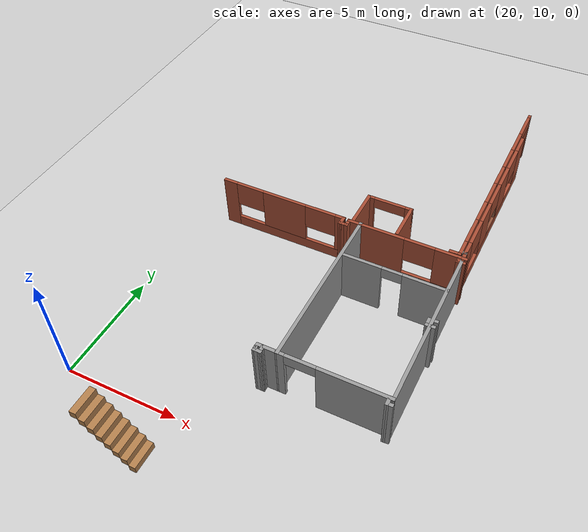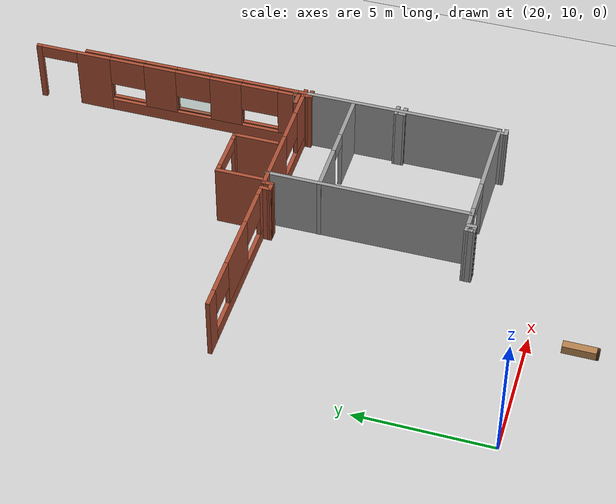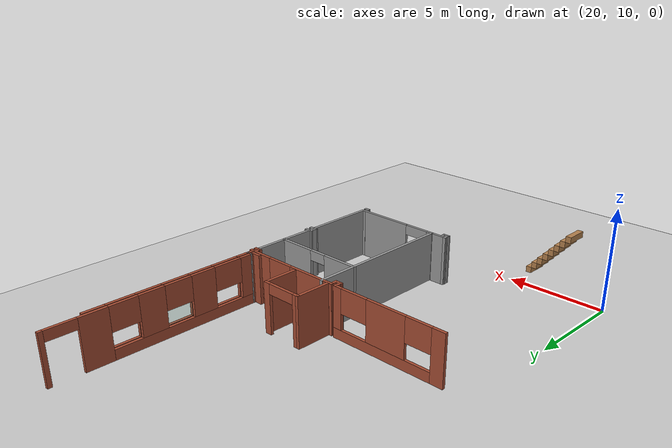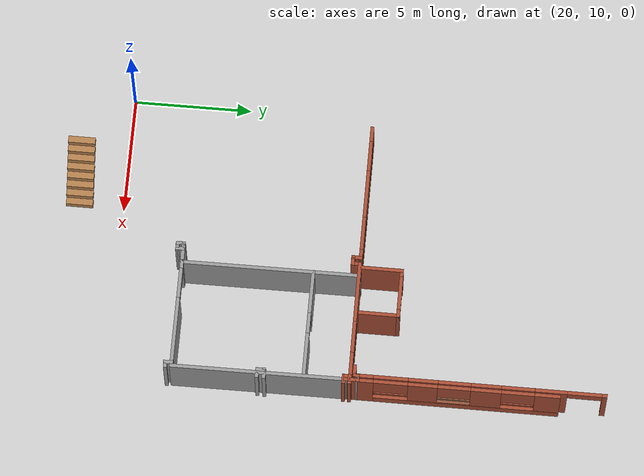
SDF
<sdf version="1.6">
 <world name="default">
  <model name="ground_plane">
   <static>1</static>
   <link name="link">
    <collision name="collision">
     <geometry><plane><normal>0 0 1</normal><size>100 100</size></plane></geometry>
     <surface><friction><ode><mu>100</mu><mu2>50</mu2></ode></friction></surface>
    </collision>
    <visual name="visual">
     <cast_shadows>0</cast_shadows>
     <geometry><plane><normal>0 0 1</normal><size>100 100</size></plane></geometry>
     <material>
      <script><uri>file://media/materials/scripts/gazebo.material</uri><name>Gazebo/Grey</name></script>
     </material>
    </visual>
   </link>
  </model>
  <model name="CVSSP">
   <pose>23.8714 24.094 0 0 -0 0</pose>
   <link name="Stairs_6">
    <visual name="Stairs_6_Visual_0">
     <pose>0.989254 -16.0013 0.15625 0 -0 -1.5708</pose>
     <geometry><box><size>1.145 0.28375 0.3125</size></box></geometry>
     <material>
      <script><uri>file://media/materials/scripts/gazebo.material</uri><name>Gazebo/Wood</name></script>
      <ambient>1 1 1 1</ambient>
     </material>
    </visual>
    <collision name="Stairs_6_Collision_0">
     <geometry><box><size>1.145 0.28375 0.3125</size></box></geometry>
     <pose>0.989254 -16.0013 0.15625 0 -0 -1.5708</pose>
    </collision>
    <visual name="Stairs_6_Visual_1">
     <pose>0.705504 -16.0013 0.46875 0 -0 -1.5708</pose>
     <geometry><box><size>1.145 0.28375 0.3125</size></box></geometry>
     <material>
      <script><uri>file://media/materials/scripts/gazebo.material</uri><name>Gazebo/Wood</name></script>
      <ambient>1 1 1 1</ambient>
     </material>
    </visual>
    <collision name="Stairs_6_Collision_1">
     <geometry><box><size>1.145 0.28375 0.3125</size></box></geometry>
     <pose>0.705504 -16.0013 0.46875 0 -0 -1.5708</pose>
    </collision>
    <visual name="Stairs_6_Visual_2">
     <pose>0.421754 -16.0013 0.78125 0 -0 -1.5708</pose>
     <geometry><box><size>1.145 0.28375 0.3125</size></box></geometry>
     <material>
      <script><uri>file://media/materials/scripts/gazebo.material</uri><name>Gazebo/Wood</name></script>
      <ambient>1 1 1 1</ambient>
     </material>
    </visual>
    <collision name="Stairs_6_Collision_2">
     <geometry><box><size>1.145 0.28375 0.3125</size></box></geometry>
     <pose>0.421754 -16.0013 0.78125 0 -0 -1.5708</pose>
    </collision>
    <visual name="Stairs_6_Visual_3">
     <pose>0.138004 -16.0013 1.09375 0 -0 -1.5708</pose>
     <geometry><box><size>1.145 0.28375 0.3125</size></box></geometry>
     <material>
      <script><uri>file://media/materials/scripts/gazebo.material</uri><name>Gazebo/Wood</name></script>
      <ambient>1 1 1 1</ambient>
     </material>
    </visual>
    <collision name="Stairs_6_Collision_3">
     <geometry><box><size>1.145 0.28375 0.3125</size></box></geometry>
     <pose>0.138004 -16.0013 1.09375 0 -0 -1.5708</pose>
    </collision>
    <visual name="Stairs_6_Visual_4">
     <pose>-0.145746 -16.0013 1.40625 0 -0 -1.5708</pose>
     <geometry><box><size>1.145 0.28375 0.3125</size></box></geometry>
     <material>
      <script><uri>file://media/materials/scripts/gazebo.material</uri><name>Gazebo/Wood</name></script>
      <ambient>1 1 1 1</ambient>
     </material>
    </visual>
    <collision name="Stairs_6_Collision_4">
     <geometry><box><size>1.145 0.28375 0.3125</size></box></geometry>
     <pose>-0.145746 -16.0013 1.40625 0 -0 -1.5708</pose>
    </collision>
    <visual name="Stairs_6_Visual_5">
     <pose>-0.429496 -16.0013 1.71875 0 -0 -1.5708</pose>
     <geometry><box><size>1.145 0.28375 0.3125</size></box></geometry>
     <material>
      <script><uri>file://media/materials/scripts/gazebo.material</uri><name>Gazebo/Wood</name></script>
      <ambient>1 1 1 1</ambient>
     </material>
    </visual>
    <collision name="Stairs_6_Collision_5">
     <geometry><box><size>1.145 0.28375 0.3125</size></box></geometry>
     <pose>-0.429496 -16.0013 1.71875 0 -0 -1.5708</pose>
    </collision>
    <visual name="Stairs_6_Visual_6">
     <pose>-0.713246 -16.0013 2.03125 0 -0 -1.5708</pose>
     <geometry><box><size>1.145 0.28375 0.3125</size></box></geometry>
     <material>
      <script><uri>file://media/materials/scripts/gazebo.material</uri><name>Gazebo/Wood</name></script>
      <ambient>1 1 1 1</ambient>
     </material>
    </visual>
    <collision name="Stairs_6_Collision_6">
     <geometry><box><size>1.145 0.28375 0.3125</size></box></geometry>
     <pose>-0.713246 -16.0013 2.03125 0 -0 -1.5708</pose>
    </collision>
    <visual name="Stairs_6_Visual_7">
     <pose>-0.996996 -16.0013 2.34375 0 -0 -1.5708</pose>
     <geometry><box><size>1.145 0.28375 0.3125</size></box></geometry>
     <material>
      <script><uri>file://media/materials/scripts/gazebo.material</uri><name>Gazebo/Wood</name></script>
      <ambient>1 1 1 1</ambient>
     </material>
    </visual>
    <collision name="Stairs_6_Collision_7">
     <geometry><box><size>1.145 0.28375 0.3125</size></box></geometry>
     <pose>-0.996996 -16.0013 2.34375 0 -0 -1.5708</pose>
    </collision>
   </link>
   <link name="Wall_116">
    <collision name="Wall_116_Collision">
     <geometry><box><size>7.43734 0.15 2.5</size></box></geometry>
     <pose>0 0 1.25 0 -0 0</pose>
    </collision>
    <visual name="Wall_116_Visual">
     <pose>0 0 1.25 0 -0 0</pose>
     <geometry><box><size>7.43734 0.15 2.5</size></box></geometry>
     <material>
      <script><uri>file://media/materials/scripts/gazebo.material</uri><name>Gazebo/Grey</name></script>
      <ambient>1 1 1 1</ambient>
     </material>
    </visual>
    <pose>8.67152 -7.59872 0 0 -0 1.57447</pose>
   </link>
   <link name="Wall_118">
    <collision name="Wall_118_Collision">
     <geometry><box><size>0.6489 0.15 2.5</size></box></geometry>
     <pose>0 0 1.25 0 -0 0</pose>
    </collision>
    <visual name="Wall_118_Visual">
     <pose>0 0 1.25 0 -0 0</pose>
     <geometry><box><size>0.6489 0.15 2.5</size></box></geometry>
     <material>
      <script><uri>file://media/materials/scripts/gazebo.material</uri><name>Gazebo/Bricks</name></script>
      <ambient>1 1 1 1</ambient>
     </material>
    </visual>
    <pose>8.65546 -3.70564 0 0 0 -1.56013</pose>
   </link>
   <link name="Wall_119">
    <collision name="Wall_119_Collision">
     <geometry><box><size>0.297808 0.15 2.5</size></box></geometry>
     <pose>0 0 1.25 0 -0 0</pose>
    </collision>
    <visual name="Wall_119_Visual">
     <pose>0 0 1.25 0 -0 0</pose>
     <geometry><box><size>0.297808 0.15 2.5</size></box></geometry>
     <material>
      <script><uri>file://media/materials/scripts/gazebo.material</uri><name>Gazebo/Bricks</name></script>
      <ambient>1 1 1 1</ambient>
     </material>
    </visual>
    <pose>8.58427 -3.95789 0 0 0 -3.10353</pose>
   </link>
   <link name="Wall_120">
    <collision name="Wall_120_Collision">
     <geometry><box><size>0.331632 0.15 2.5</size></box></geometry>
     <pose>0 0 1.25 0 -0 0</pose>
    </collision>
    <visual name="Wall_120_Visual">
     <pose>0 0 1.25 0 -0 0</pose>
     <geometry><box><size>0.331632 0.15 2.5</size></box></geometry>
     <material>
      <script><uri>file://media/materials/scripts/gazebo.material</uri><name>Gazebo/Bricks</name></script>
      <ambient>1 1 1 1</ambient>
     </material>
    </visual>
    <pose>8.51042 -3.86996 0 0 -0 1.5708</pose>
   </link>
   <link name="Wall_121">
    <collision name="Wall_121_Collision">
     <geometry><box><size>0.41465 0.15 2.5</size></box></geometry>
     <pose>0 0 1.25 0 -0 0</pose>
    </collision>
    <visual name="Wall_121_Visual">
     <pose>0 0 1.25 0 -0 0</pose>
     <geometry><box><size>0.41465 0.15 2.5</size></box></geometry>
     <material>
      <script><uri>file://media/materials/scripts/gazebo.material</uri><name>Gazebo/Bricks</name></script>
      <ambient>1 1 1 1</ambient>
     </material>
    </visual>
    <pose>8.64275 -3.77922 0 0 -0 0</pose>
   </link>
   <link name="Wall_123">
    <collision name="Wall_123_Collision">
     <geometry><box><size>0.415082 0.15 2.5</size></box></geometry>
     <pose>0 0 1.25 0 -0 0</pose>
    </collision>
    <visual name="Wall_123_Visual">
     <pose>0 0 1.25 0 -0 0</pose>
     <geometry><box><size>0.415082 0.15 2.5</size></box></geometry>
     <material>
      <script><uri>file://media/materials/scripts/gazebo.material</uri><name>Gazebo/Bricks</name></script>
      <ambient>1 1 1 1</ambient>
     </material>
    </visual>
    <pose>8.64275 -4.02875 0 0 -0 3.14159</pose>
   </link>
   <link name="Wall_465">
    <collision name="Wall_465_Collision">
     <geometry><box><size>0.529047 0.15 2.5</size></box></geometry>
     <pose>0 0 1.25 0 -0 0</pose>
    </collision>
    <visual name="Wall_465_Visual">
     <pose>0 0 1.25 0 -0 0</pose>
     <geometry><box><size>0.529047 0.15 2.5</size></box></geometry>
     <material>
      <script><uri>file://media/materials/scripts/gazebo.material</uri><name>Gazebo/Bricks</name></script>
      <ambient>1 1 1 1</ambient>
     </material>
    </visual>
    <pose>8.25042 -3.5996 0 0 -0 0.010433</pose>
   </link>
   <link name="Wall_466">
    <collision name="Wall_466_Collision">
     <geometry><box><size>0.28943 0.15 2.5</size></box></geometry>
     <pose>0 0 1.25 0 -0 0</pose>
    </collision>
    <visual name="Wall_466_Visual">
     <pose>0 0 1.25 0 -0 0</pose>
     <geometry><box><size>0.28943 0.15 2.5</size></box></geometry>
     <material>
      <script><uri>file://media/materials/scripts/gazebo.material</uri><name>Gazebo/Bricks</name></script>
      <ambient>1 1 1 1</ambient>
     </material>
    </visual>
    <pose>8.4463 -3.5282 0 0 -0 1.47944</pose>
   </link>
   <link name="Wall_468">
    <collision name="Wall_468_Collision">
     <geometry><box><size>1.81156 0.15 2.5</size></box></geometry>
     <pose>0 0 1.25 0 -0 0</pose>
    </collision>
    <visual name="Wall_468_Visual">
     <pose>0 0 1.25 0 -0 0</pose>
     <geometry><box><size>1.81156 0.15 2.5</size></box></geometry>
     <material>
      <script><uri>file://media/materials/scripts/gazebo.material</uri><name>Gazebo/Bricks</name></script>
      <ambient>1 1 1 1</ambient>
     </material>
    </visual>
    <pose>3.68791 -2.82478 0 0 -0 1.5708</pose>
   </link>
   <link name="Wall_469">
    <pose>4.68485 -1.99401 0 0 -0 0</pose>
    <visual name="Wall_469_Visual_0">
     <pose>-0.899938 0 1.25 0 -0 0</pose>
     <geometry><box><size>0.343992 0.15 2.5</size></box></geometry>
     <material>
      <script><uri>file://media/materials/scripts/gazebo.material</uri><name>Gazebo/Bricks</name></script>
      <ambient>1 1 1 1</ambient>
     </material>
    </visual>
    <collision name="Wall_469_Collision_0">
     <geometry><box><size>0.343992 0.15 2.5</size></box></geometry>
     <pose>-0.899938 0 1.25 0 -0 0</pose>
    </collision>
    <visual name="Wall_469_Visual_1">
     <pose>0.897049 0 1.25 0 -0 0</pose>
     <geometry><box><size>0.349769 0.15 2.5</size></box></geometry>
     <material>
      <script><uri>file://media/materials/scripts/gazebo.material</uri><name>Gazebo/Bricks</name></script>
      <ambient>1 1 1 1</ambient>
     </material>
    </visual>
    <collision name="Wall_469_Collision_1">
     <geometry><box><size>0.349769 0.15 2.5</size></box></geometry>
     <pose>0.897049 0 1.25 0 -0 0</pose>
    </collision>
    <visual name="Wall_469_Visual_2">
     <pose>-0.002889 0 2.25 0 -0 0</pose>
     <geometry><box><size>1.45011 0.15 0.5</size></box></geometry>
     <material>
      <script><uri>file://media/materials/scripts/gazebo.material</uri><name>Gazebo/Bricks</name></script>
      <ambient>1 1 1 1</ambient>
     </material>
    </visual>
    <collision name="Wall_469_Collision_2">
     <geometry><box><size>1.45011 0.15 0.5</size></box></geometry>
     <pose>-0.002889 0 2.25 0 -0 0</pose>
    </collision>
   </link>
   <link name="Wall_470">
    <collision name="Wall_470_Collision">
     <geometry><box><size>1.75 0.15 2.5</size></box></geometry>
     <pose>0 0 1.25 0 -0 0</pose>
    </collision>
    <visual name="Wall_470_Visual">
     <pose>0 0 1.25 0 -0 0</pose>
     <geometry><box><size>1.75 0.15 2.5</size></box></geometry>
     <material>
      <script><uri>file://media/materials/scripts/gazebo.material</uri><name>Gazebo/Bricks</name></script>
      <ambient>1 1 1 1</ambient>
     </material>
    </visual>
    <pose>5.68178 -2.79401 0 0 0 -1.5708</pose>
   </link>
   <link name="Wall_510">
    <pose>6.36165 -11.2424 0 0 -0 3.14159</pose>
    <visual name="Wall_510_Visual_0">
     <pose>-0.840975 0 1.25 0 -0 0</pose>
     <geometry><box><size>3.06805 0.15 2.5</size></box></geometry>
     <material>
      <script><uri>file://media/materials/scripts/gazebo.material</uri><name>Gazebo/Grey</name></script>
      <ambient>0.588235 0.588235 0.588235 1</ambient>
     </material>
    </visual>
    <collision name="Wall_510_Collision_0">
     <geometry><box><size>3.06805 0.15 2.5</size></box></geometry>
     <pose>-0.840975 0 1.25 0 -0 0</pose>
    </collision>
    <visual name="Wall_510_Visual_1">
     <pose>2.18353 0 1.25 0 -0 0</pose>
     <geometry><box><size>0.382947 0.15 2.5</size></box></geometry>
     <material>
      <script><uri>file://media/materials/scripts/gazebo.material</uri><name>Gazebo/Grey</name></script>
      <ambient>0.588235 0.588235 0.588235 1</ambient>
     </material>
    </visual>
    <collision name="Wall_510_Collision_1">
     <geometry><box><size>0.382947 0.15 2.5</size></box></geometry>
     <pose>2.18353 0 1.25 0 -0 0</pose>
    </collision>
    <visual name="Wall_510_Visual_2">
     <pose>1.34255 0 2.25 0 -0 0</pose>
     <geometry><box><size>1.299 0.15 0.5</size></box></geometry>
     <material>
      <script><uri>file://media/materials/scripts/gazebo.material</uri><name>Gazebo/Grey</name></script>
      <ambient>0.588235 0.588235 0.588235 1</ambient>
     </material>
    </visual>
    <collision name="Wall_510_Collision_2">
     <geometry><box><size>1.299 0.15 0.5</size></box></geometry>
     <pose>1.34255 0 2.25 0 -0 0</pose>
    </collision>
   </link>
   <link name="Wall_511">
    <collision name="Wall_511_Collision">
     <geometry><box><size>7.64004 0.15 2.5</size></box></geometry>
     <pose>0 0 1.25 0 -0 0</pose>
    </collision>
    <visual name="Wall_511_Visual">
     <pose>0 0 1.25 0 -0 0</pose>
     <geometry><box><size>7.64004 0.15 2.5</size></box></geometry>
     <material>
      <script><uri>file://media/materials/scripts/gazebo.material</uri><name>Gazebo/Grey</name></script>
      <ambient>0.588235 0.588235 0.588235 1</ambient>
     </material>
    </visual>
    <pose>4.07328 -7.49736 0 0 -0 1.5739</pose>
   </link>
   <link name="Wall_513">
    <pose>6.35679 -5.70156 0 0 -0 0</pose>
    <visual name="Wall_513_Visual_0">
     <pose>-1.42856 0 1.25 0 -0 0</pose>
     <geometry><box><size>1.89288 0.15 2.5</size></box></geometry>
     <material>
      <script><uri>file://media/materials/scripts/gazebo.material</uri><name>Gazebo/Grey</name></script>
      <ambient>0.588235 0.588235 0.588235 1</ambient>
     </material>
    </visual>
    <collision name="Wall_513_Collision_0">
     <geometry><box><size>1.89288 0.15 2.5</size></box></geometry>
     <pose>-1.42856 0 1.25 0 -0 0</pose>
    </collision>
    <visual name="Wall_513_Visual_1">
     <pose>1.39644 0 1.25 0 -0 0</pose>
     <geometry><box><size>1.95712 0.15 2.5</size></box></geometry>
     <material>
      <script><uri>file://media/materials/scripts/gazebo.material</uri><name>Gazebo/Grey</name></script>
      <ambient>0.588235 0.588235 0.588235 1</ambient>
     </material>
    </visual>
    <collision name="Wall_513_Collision_1">
     <geometry><box><size>1.95712 0.15 2.5</size></box></geometry>
     <pose>1.39644 0 1.25 0 -0 0</pose>
    </collision>
    <visual name="Wall_513_Visual_2">
     <pose>-0.032121 0 2.25 0 -0 0</pose>
     <geometry><box><size>0.9 0.15 0.5</size></box></geometry>
     <material>
      <script><uri>file://media/materials/scripts/gazebo.material</uri><name>Gazebo/Grey</name></script>
      <ambient>0.588235 0.588235 0.588235 1</ambient>
     </material>
    </visual>
    <collision name="Wall_513_Collision_2">
     <geometry><box><size>0.9 0.15 0.5</size></box></geometry>
     <pose>-0.032121 0 2.25 0 -0 0</pose>
    </collision>
   </link>
   <link name="Wall_515">
    <collision name="Wall_515_Collision">
     <geometry><box><size>0.96868 0.15 2.5</size></box></geometry>
     <pose>0 0 1.25 0 -0 0</pose>
    </collision>
    <visual name="Wall_515_Visual">
     <pose>0 0 1.25 0 -0 0</pose>
     <geometry><box><size>0.96868 0.15 2.5</size></box></geometry>
     <material>
      <script><uri>file://media/materials/scripts/gazebo.material</uri><name>Gazebo/Grey</name></script>
      <ambient>0.588235 0.588235 0.588235 1</ambient>
     </material>
    </visual>
    <pose>3.67558 -11.2435 0 0 0 -3.13878</pose>
   </link>
   <link name="Wall_516">
    <collision name="Wall_516_Collision">
     <geometry><box><size>0.299942 0.15 2.5</size></box></geometry>
     <pose>0 0 1.25 0 -0 0</pose>
    </collision>
    <visual name="Wall_516_Visual">
     <pose>0 0 1.25 0 -0 0</pose>
     <geometry><box><size>0.299942 0.15 2.5</size></box></geometry>
     <material>
      <script><uri>file://media/materials/scripts/gazebo.material</uri><name>Gazebo/Grey</name></script>
      <ambient>1 1 1 1</ambient>
     </material>
    </visual>
    <pose>3.26624 -11.3194 0 0 0 -1.5708</pose>
   </link>
   <link name="Wall_809">
    <pose>0.343033 -3.76669 0 0 -0 0</pose>
    <visual name="Wall_809_Visual_0">
     <pose>-2.66868 0 1.25 0 -0 0</pose>
     <geometry><box><size>0.662631 0.15 2.5</size></box></geometry>
     <material>
      <script><uri>file://media/materials/scripts/gazebo.material</uri><name>Gazebo/Bricks</name></script>
      <ambient>1 1 1 1</ambient>
     </material>
    </visual>
    <collision name="Wall_809_Collision_0">
     <geometry><box><size>0.662631 0.15 2.5</size></box></geometry>
     <pose>-2.66868 0 1.25 0 -0 0</pose>
    </collision>
    <visual name="Wall_809_Visual_1">
     <pose>0.331316 0 0.25 0 -0 0</pose>
     <geometry><box><size>5.33737 0.15 0.5</size></box></geometry>
     <material>
      <script><uri>file://media/materials/scripts/gazebo.material</uri><name>Gazebo/Bricks</name></script>
      <ambient>1 1 1 1</ambient>
     </material>
    </visual>
    <collision name="Wall_809_Collision_1">
     <geometry><box><size>5.33737 0.15 0.5</size></box></geometry>
     <pose>0.331316 0 0.25 0 -0 0</pose>
    </collision>
    <visual name="Wall_809_Visual_2">
     <pose>0.0492 0 1.5 0 -0 0</pose>
     <geometry><box><size>2.09736 0.15 2</size></box></geometry>
     <material>
      <script><uri>file://media/materials/scripts/gazebo.material</uri><name>Gazebo/Bricks</name></script>
      <ambient>1 1 1 1</ambient>
     </material>
    </visual>
    <collision name="Wall_809_Collision_2">
     <geometry><box><size>2.09736 0.15 2</size></box></geometry>
     <pose>0.0492 0 1.5 0 -0 0</pose>
    </collision>
    <visual name="Wall_809_Visual_3">
     <pose>2.76811 0 1.5 0 -0 0</pose>
     <geometry><box><size>0.463782 0.15 2</size></box></geometry>
     <material>
      <script><uri>file://media/materials/scripts/gazebo.material</uri><name>Gazebo/Bricks</name></script>
      <ambient>1 1 1 1</ambient>
     </material>
    </visual>
    <collision name="Wall_809_Collision_3">
     <geometry><box><size>0.463782 0.15 2</size></box></geometry>
     <pose>2.76811 0 1.5 0 -0 0</pose>
    </collision>
    <visual name="Wall_809_Visual_4">
     <pose>-1.66843 0 1.9 0 -0 0</pose>
     <geometry><box><size>1.33789 0.15 1.2</size></box></geometry>
     <material>
      <script><uri>file://media/materials/scripts/gazebo.material</uri><name>Gazebo/Bricks</name></script>
      <ambient>1 1 1 1</ambient>
     </material>
    </visual>
    <collision name="Wall_809_Collision_4">
     <geometry><box><size>1.33789 0.15 1.2</size></box></geometry>
     <pose>-1.66843 0 1.9 0 -0 0</pose>
    </collision>
    <visual name="Wall_809_Visual_5">
     <pose>1.81705 0 1.9 0 -0 0</pose>
     <geometry><box><size>1.43833 0.15 1.2</size></box></geometry>
     <material>
      <script><uri>file://media/materials/scripts/gazebo.material</uri><name>Gazebo/Bricks</name></script>
      <ambient>1 1 1 1</ambient>
     </material>
    </visual>
    <collision name="Wall_809_Collision_5">
     <geometry><box><size>1.43833 0.15 1.2</size></box></geometry>
     <pose>1.81705 0 1.9 0 -0 0</pose>
    </collision>
   </link>
   <link name="Wall_810">
    <collision name="Wall_810_Collision">
     <geometry><box><size>0.453959 0.15 2.5</size></box></geometry>
     <pose>0 0 1.25 0 -0 0</pose>
    </collision>
    <visual name="Wall_810_Visual">
     <pose>0 0 1.25 0 -0 0</pose>
     <geometry><box><size>0.453959 0.15 2.5</size></box></geometry>
     <material>
      <script><uri>file://media/materials/scripts/gazebo.material</uri><name>Gazebo/Bricks</name></script>
      <ambient>1 1 1 1</ambient>
     </material>
    </visual>
    <pose>3.26225 -3.93012 0 0 0 -1.60885</pose>
   </link>
   <link name="Wall_811">
    <collision name="Wall_811_Collision">
     <geometry><box><size>0.429611 0.15 2.5</size></box></geometry>
     <pose>0 0 1.25 0 -0 0</pose>
    </collision>
    <visual name="Wall_811_Visual">
     <pose>0 0 1.25 0 -0 0</pose>
     <geometry><box><size>0.429611 0.15 2.5</size></box></geometry>
     <material>
      <script><uri>file://media/materials/scripts/gazebo.material</uri><name>Gazebo/Bricks</name></script>
      <ambient>1 1 1 1</ambient>
     </material>
    </visual>
    <pose>3.39627 -4.08199 0 0 -0 0</pose>
   </link>
   <link name="Wall_812">
    <collision name="Wall_812_Collision">
     <geometry><box><size>0.451586 0.15 2.5</size></box></geometry>
     <pose>0 0 1.25 0 -0 0</pose>
    </collision>
    <visual name="Wall_812_Visual">
     <pose>0 0 1.25 0 -0 0</pose>
     <geometry><box><size>0.451586 0.15 2.5</size></box></geometry>
     <material>
      <script><uri>file://media/materials/scripts/gazebo.material</uri><name>Gazebo/Bricks</name></script>
      <ambient>1 1 1 1</ambient>
     </material>
    </visual>
    <pose>3.53608 -3.93164 0 0 -0 1.5708</pose>
   </link>
   <link name="Wall_813">
    <pose>6.02262 -3.77551 0 0 -0 0.002326</pose>
    <visual name="Wall_813_Visual_0">
     <pose>-1.25053 0 1.25 0 -0 0</pose>
     <geometry><box><size>2.62204 0.15 2.5</size></box></geometry>
     <material>
      <script><uri>file://media/materials/scripts/gazebo.material</uri><name>Gazebo/Bricks</name></script>
      <ambient>1 1 1 1</ambient>
     </material>
    </visual>
    <collision name="Wall_813_Collision_0">
     <geometry><box><size>2.62204 0.15 2.5</size></box></geometry>
     <pose>-1.25053 0 1.25 0 -0 0</pose>
    </collision>
    <visual name="Wall_813_Visual_1">
     <pose>1.31102 0 0.25 0 -0 0</pose>
     <geometry><box><size>2.50105 0.15 0.5</size></box></geometry>
     <material>
      <script><uri>file://media/materials/scripts/gazebo.material</uri><name>Gazebo/Bricks</name></script>
      <ambient>1 1 1 1</ambient>
     </material>
    </visual>
    <collision name="Wall_813_Collision_1">
     <geometry><box><size>2.50105 0.15 0.5</size></box></geometry>
     <pose>1.31102 0 0.25 0 -0 0</pose>
    </collision>
    <visual name="Wall_813_Visual_2">
     <pose>1.9938 0 1.5 0 -0 0</pose>
     <geometry><box><size>1.13549 0.15 2</size></box></geometry>
     <material>
      <script><uri>file://media/materials/scripts/gazebo.material</uri><name>Gazebo/Bricks</name></script>
      <ambient>1 1 1 1</ambient>
     </material>
    </visual>
    <collision name="Wall_813_Collision_2">
     <geometry><box><size>1.13549 0.15 2</size></box></geometry>
     <pose>1.9938 0 1.5 0 -0 0</pose>
    </collision>
    <visual name="Wall_813_Visual_3">
     <pose>0.743275 0 1.9 0 -0 0</pose>
     <geometry><box><size>1.36556 0.15 1.2</size></box></geometry>
     <material>
      <script><uri>file://media/materials/scripts/gazebo.material</uri><name>Gazebo/Bricks</name></script>
      <ambient>1 1 1 1</ambient>
     </material>
    </visual>
    <collision name="Wall_813_Collision_3">
     <geometry><box><size>1.36556 0.15 1.2</size></box></geometry>
     <pose>0.743275 0 1.9 0 -0 0</pose>
    </collision>
   </link>
   <link name="Wall_854">
    <collision name="Wall_854_Collision">
     <geometry><box><size>0.254118 0.15 2.5</size></box></geometry>
     <pose>0 0 1.25 0 -0 0</pose>
    </collision>
    <visual name="Wall_854_Visual">
     <pose>0 0 1.25 0 -0 0</pose>
     <geometry><box><size>0.254118 0.15 2.5</size></box></geometry>
     <material>
      <script><uri>file://media/materials/scripts/gazebo.material</uri><name>Gazebo/Grey</name></script>
      <ambient>1 1 1 1</ambient>
     </material>
    </visual>
    <pose>3.26333 -11.444 0 0 0 -1.48765</pose>
   </link>
   <link name="Wall_855">
    <collision name="Wall_855_Collision">
     <geometry><box><size>0.383617 0.15 2.5</size></box></geometry>
     <pose>0 0 1.25 0 -0 0</pose>
    </collision>
    <visual name="Wall_855_Visual">
     <pose>0 0 1.25 0 -0 0</pose>
     <geometry><box><size>0.383617 0.15 2.5</size></box></geometry>
     <material>
      <script><uri>file://media/materials/scripts/gazebo.material</uri><name>Gazebo/Grey</name></script>
      <ambient>1 1 1 1</ambient>
     </material>
    </visual>
    <pose>3.38438 -11.4958 0 0 -0 0</pose>
   </link>
   <link name="Wall_856">
    <collision name="Wall_856_Collision">
     <geometry><box><size>0.392258 0.15 2.5</size></box></geometry>
     <pose>0 0 1.25 0 -0 0</pose>
    </collision>
    <visual name="Wall_856_Visual">
     <pose>0 0 1.25 0 -0 0</pose>
     <geometry><box><size>0.392258 0.15 2.5</size></box></geometry>
     <material>
      <script><uri>file://media/materials/scripts/gazebo.material</uri><name>Gazebo/Grey</name></script>
      <ambient>1 1 1 1</ambient>
     </material>
    </visual>
    <pose>3.49679 -11.3748 0 0 -0 1.6065</pose>
   </link>
   <link name="Wall_859">
    <collision name="Wall_859_Collision">
     <geometry><box><size>0.314512 0.15 2.5</size></box></geometry>
     <pose>0 0 1.25 0 -0 0</pose>
    </collision>
    <visual name="Wall_859_Visual">
     <pose>0 0 1.25 0 -0 0</pose>
     <geometry><box><size>0.314512 0.15 2.5</size></box></geometry>
     <material>
      <script><uri>file://media/materials/scripts/gazebo.material</uri><name>Gazebo/Grey</name></script>
      <ambient>1 1 1 1</ambient>
     </material>
    </visual>
    <pose>8.63284 -11.5002 0 0 0 -3.08901</pose>
   </link>
   <link name="Wall_860">
    <collision name="Wall_860_Collision">
     <geometry><box><size>0.418183 0.15 2.5</size></box></geometry>
     <pose>0 0 1.25 0 -0 0</pose>
    </collision>
    <visual name="Wall_860_Visual">
     <pose>0 0 1.25 0 -0 0</pose>
     <geometry><box><size>0.418183 0.15 2.5</size></box></geometry>
     <material>
      <script><uri>file://media/materials/scripts/gazebo.material</uri><name>Gazebo/Grey</name></script>
      <ambient>1 1 1 1</ambient>
     </material>
    </visual>
    <pose>8.54637 -11.3705 0 0 -0 1.60304</pose>
   </link>
   <link name="Wall_862">
    <collision name="Wall_862_Collision">
     <geometry><box><size>0.457357 0.15 2.5</size></box></geometry>
     <pose>0 0 1.25 0 -0 0</pose>
    </collision>
    <visual name="Wall_862_Visual">
     <pose>0 0 1.25 0 -0 0</pose>
     <geometry><box><size>0.457357 0.15 2.5</size></box></geometry>
     <material>
      <script><uri>file://media/materials/scripts/gazebo.material</uri><name>Gazebo/Grey</name></script>
      <ambient>1 1 1 1</ambient>
     </material>
    </visual>
    <pose>8.68766 -7.36008 0 0 0 -3.09906</pose>
   </link>
   <link name="Wall_863">
    <collision name="Wall_863_Collision">
     <geometry><box><size>0.431212 0.15 2.5</size></box></geometry>
     <pose>0 0 1.25 0 -0 0</pose>
    </collision>
    <visual name="Wall_863_Visual">
     <pose>0 0 1.25 0 -0 0</pose>
     <geometry><box><size>0.431212 0.15 2.5</size></box></geometry>
     <material>
      <script><uri>file://media/materials/scripts/gazebo.material</uri><name>Gazebo/Grey</name></script>
      <ambient>1 1 1 1</ambient>
     </material>
    </visual>
    <pose>8.53729 -7.50718 0 0 0 -1.54754</pose>
   </link>
   <link name="Wall_864">
    <collision name="Wall_864_Collision">
     <geometry><box><size>0.437748 0.15 2.5</size></box></geometry>
     <pose>0 0 1.25 0 -0 0</pose>
    </collision>
    <visual name="Wall_864_Visual">
     <pose>0 0 1.25 0 -0 0</pose>
     <geometry><box><size>0.437748 0.15 2.5</size></box></geometry>
     <material>
      <script><uri>file://media/materials/scripts/gazebo.material</uri><name>Gazebo/Grey</name></script>
      <ambient>1 1 1 1</ambient>
     </material>
    </visual>
    <pose>8.6844 -7.64775 0 0 -0 0</pose>
   </link>
   <link name="Wall_89">
    <pose>8.45266 1.71622 0 0 0 -1.5708</pose>
    <visual name="Wall_89_Visual_0">
     <pose>-5.14167 0 1.25 0 -0 0</pose>
     <geometry><box><size>0.216665 0.15 2.5</size></box></geometry>
     <material>
      <script><uri>file://media/materials/scripts/gazebo.material</uri><name>Gazebo/Bricks</name></script>
      <ambient>1 1 1 1</ambient>
     </material>
    </visual>
    <collision name="Wall_89_Collision_0">
     <geometry><box><size>0.216665 0.15 2.5</size></box></geometry>
     <pose>-5.14167 0 1.25 0 -0 0</pose>
    </collision>
    <visual name="Wall_89_Visual_1">
     <pose>-2.91109 0 1.25 0 -0 0</pose>
     <geometry><box><size>1.35565 0.15 2.5</size></box></geometry>
     <material>
      <script><uri>file://media/materials/scripts/gazebo.material</uri><name>Gazebo/Bricks</name></script>
      <ambient>1 1 1 1</ambient>
     </material>
    </visual>
    <collision name="Wall_89_Collision_1">
     <geometry><box><size>1.35565 0.15 2.5</size></box></geometry>
     <pose>-2.91109 0 1.25 0 -0 0</pose>
    </collision>
    <visual name="Wall_89_Visual_2">
     <pose>1.50837 0 0.25 0 -0 0</pose>
     <geometry><box><size>7.48326 0.15 0.5</size></box></geometry>
     <material>
      <script><uri>file://media/materials/scripts/gazebo.material</uri><name>Gazebo/Bricks</name></script>
      <ambient>1 1 1 1</ambient>
     </material>
    </visual>
    <collision name="Wall_89_Collision_2">
     <geometry><box><size>7.48326 0.15 0.5</size></box></geometry>
     <pose>1.50837 0 0.25 0 -0 0</pose>
    </collision>
    <visual name="Wall_89_Visual_3">
     <pose>-0.207681 0 1.5 0 -0 0</pose>
     <geometry><box><size>1.28154 0.15 2</size></box></geometry>
     <material>
      <script><uri>file://media/materials/scripts/gazebo.material</uri><name>Gazebo/Bricks</name></script>
      <ambient>1 1 1 1</ambient>
     </material>
    </visual>
    <collision name="Wall_89_Collision_3">
     <geometry><box><size>1.28154 0.15 2</size></box></geometry>
     <pose>-0.207681 0 1.5 0 -0 0</pose>
    </collision>
    <visual name="Wall_89_Visual_4">
     <pose>2.43389 0 1.5 0 -0 0</pose>
     <geometry><box><size>1.2518 0.15 2</size></box></geometry>
     <material>
      <script><uri>file://media/materials/scripts/gazebo.material</uri><name>Gazebo/Bricks</name></script>
      <ambient>1 1 1 1</ambient>
     </material>
    </visual>
    <collision name="Wall_89_Collision_4">
     <geometry><box><size>1.2518 0.15 2</size></box></geometry>
     <pose>2.43389 0 1.5 0 -0 0</pose>
    </collision>
    <visual name="Wall_89_Visual_5">
     <pose>4.882 0 1.5 0 -0 0</pose>
     <geometry><box><size>0.736008 0.15 2</size></box></geometry>
     <material>
      <script><uri>file://media/materials/scripts/gazebo.material</uri><name>Gazebo/Bricks</name></script>
      <ambient>1 1 1 1</ambient>
     </material>
    </visual>
    <collision name="Wall_89_Collision_5">
     <geometry><box><size>0.736008 0.15 2</size></box></geometry>
     <pose>4.882 0 1.5 0 -0 0</pose>
    </collision>
    <visual name="Wall_89_Visual_6">
     <pose>-1.54086 0 1.9 0 -0 0</pose>
     <geometry><box><size>1.38481 0.15 1.2</size></box></geometry>
     <material>
      <script><uri>file://media/materials/scripts/gazebo.material</uri><name>Gazebo/Bricks</name></script>
      <ambient>1 1 1 1</ambient>
     </material>
    </visual>
    <collision name="Wall_89_Collision_6">
     <geometry><box><size>1.38481 0.15 1.2</size></box></geometry>
     <pose>-1.54086 0 1.9 0 -0 0</pose>
    </collision>
    <visual name="Wall_89_Visual_7">
     <pose>1.12054 0 1.9 0 -0 0</pose>
     <geometry><box><size>1.3749 0.15 1.2</size></box></geometry>
     <material>
      <script><uri>file://media/materials/scripts/gazebo.material</uri><name>Gazebo/Bricks</name></script>
      <ambient>1 1 1 1</ambient>
     </material>
    </visual>
    <collision name="Wall_89_Collision_7">
     <geometry><box><size>1.3749 0.15 1.2</size></box></geometry>
     <pose>1.12054 0 1.9 0 -0 0</pose>
    </collision>
    <visual name="Wall_89_Visual_8">
     <pose>3.78689 0 1.9 0 -0 0</pose>
     <geometry><box><size>1.4542 0.15 1.2</size></box></geometry>
     <material>
      <script><uri>file://media/materials/scripts/gazebo.material</uri><name>Gazebo/Bricks</name></script>
      <ambient>1 1 1 1</ambient>
     </material>
    </visual>
    <collision name="Wall_89_Collision_8">
     <geometry><box><size>1.4542 0.15 1.2</size></box></geometry>
     <pose>3.78689 0 1.9 0 -0 0</pose>
    </collision>
    <visual name="Wall_89_Visual_9">
     <pose>-4.31112 0 2.25 0 -0 0</pose>
     <geometry><box><size>1.44442 0.15 0.5</size></box></geometry>
     <material>
      <script><uri>file://media/materials/scripts/gazebo.material</uri><name>Gazebo/Bricks</name></script>
      <ambient>1 1 1 1</ambient>
     </material>
    </visual>
    <collision name="Wall_89_Collision_9">
     <geometry><box><size>1.44442 0.15 0.5</size></box></geometry>
     <pose>-4.31112 0 2.25 0 -0 0</pose>
    </collision>
   </link>
   <link name="Wall_91">
    <collision name="Wall_91_Collision">
     <geometry><box><size>0.350158 0.15 2.5</size></box></geometry>
     <pose>0 0 1.25 0 -0 0</pose>
    </collision>
    <visual name="Wall_91_Visual">
     <pose>0 0 1.25 0 -0 0</pose>
     <geometry><box><size>0.350158 0.15 2.5</size></box></geometry>
     <material>
      <script><uri>file://media/materials/scripts/gazebo.material</uri><name>Gazebo/Grey</name></script>
      <ambient>1 1 1 1</ambient>
     </material>
    </visual>
    <pose>8.55273 -3.45749 0 0 -0 0.012863</pose>
   </link>
   <link name="Wall_92">
    <collision name="Wall_92_Collision">
     <geometry><box><size>0.350158 0.15 2.5</size></box></geometry>
     <pose>0 0 1.25 0 -0 0</pose>
    </collision>
    <visual name="Wall_92_Visual">
     <pose>0 0 1.25 0 -0 0</pose>
     <geometry><box><size>0.350158 0.15 2.5</size></box></geometry>
     <material>
      <script><uri>file://media/materials/scripts/gazebo.material</uri><name>Gazebo/Bricks</name></script>
      <ambient>1 1 1 1</ambient>
     </material>
    </visual>
    <pose>8.55273 -3.45749 0 0 0 -3.12873</pose>
   </link>
   <link name="Wall_94">
    <pose>8.65296 0.7494 0 0 -0 1.57076</pose>
    <visual name="Wall_94_Visual_0">
     <pose>-3.90893 0 1.25 0 -0 0</pose>
     <geometry><box><size>0.743346 0.15 2.5</size></box></geometry>
     <material>
      <script><uri>file://media/materials/scripts/gazebo.material</uri><name>Gazebo/Bricks</name></script>
      <ambient>1 1 1 1</ambient>
     </material>
    </visual>
    <collision name="Wall_94_Collision_0">
     <geometry><box><size>0.743346 0.15 2.5</size></box></geometry>
     <pose>-3.90893 0 1.25 0 -0 0</pose>
    </collision>
    <visual name="Wall_94_Visual_1">
     <pose>0.371673 0 0.25 0 -0 0</pose>
     <geometry><box><size>7.81786 0.15 0.5</size></box></geometry>
     <material>
      <script><uri>file://media/materials/scripts/gazebo.material</uri><name>Gazebo/Bricks</name></script>
      <ambient>1 1 1 1</ambient>
     </material>
    </visual>
    <collision name="Wall_94_Collision_1">
     <geometry><box><size>7.81786 0.15 0.5</size></box></geometry>
     <pose>0.371673 0 0.25 0 -0 0</pose>
    </collision>
    <visual name="Wall_94_Visual_2">
     <pose>-1.47202 0 1.5 0 -0 0</pose>
     <geometry><box><size>1.24189 0.15 2</size></box></geometry>
     <material>
      <script><uri>file://media/materials/scripts/gazebo.material</uri><name>Gazebo/Bricks</name></script>
      <ambient>1 1 1 1</ambient>
     </material>
    </visual>
    <collision name="Wall_94_Collision_2">
     <geometry><box><size>1.24189 0.15 2</size></box></geometry>
     <pose>-1.47202 0 1.5 0 -0 0</pose>
    </collision>
    <visual name="Wall_94_Visual_3">
     <pose>1.1745 0 1.5 0 -0 0</pose>
     <geometry><box><size>1.28154 0.15 2</size></box></geometry>
     <material>
      <script><uri>file://media/materials/scripts/gazebo.material</uri><name>Gazebo/Bricks</name></script>
      <ambient>1 1 1 1</ambient>
     </material>
    </visual>
    <collision name="Wall_94_Collision_3">
     <geometry><box><size>1.28154 0.15 2</size></box></geometry>
     <pose>1.1745 0 1.5 0 -0 0</pose>
    </collision>
    <visual name="Wall_94_Visual_4">
     <pose>3.7453 0 1.5 0 -0 0</pose>
     <geometry><box><size>1.0706 0.15 2</size></box></geometry>
     <material>
      <script><uri>file://media/materials/scripts/gazebo.material</uri><name>Gazebo/Bricks</name></script>
      <ambient>1 1 1 1</ambient>
     </material>
    </visual>
    <collision name="Wall_94_Collision_4">
     <geometry><box><size>1.0706 0.15 2</size></box></geometry>
     <pose>3.7453 0 1.5 0 -0 0</pose>
    </collision>
    <visual name="Wall_94_Visual_5">
     <pose>-2.81511 0 1.9 0 -0 0</pose>
     <geometry><box><size>1.44429 0.15 1.2</size></box></geometry>
     <material>
      <script><uri>file://media/materials/scripts/gazebo.material</uri><name>Gazebo/Bricks</name></script>
      <ambient>1 1 1 1</ambient>
     </material>
    </visual>
    <collision name="Wall_94_Collision_5">
     <geometry><box><size>1.44429 0.15 1.2</size></box></geometry>
     <pose>-2.81511 0 1.9 0 -0 0</pose>
    </collision>
    <visual name="Wall_94_Visual_6">
     <pose>-0.158672 0 1.9 0 -0 0</pose>
     <geometry><box><size>1.38481 0.15 1.2</size></box></geometry>
     <material>
      <script><uri>file://media/materials/scripts/gazebo.material</uri><name>Gazebo/Bricks</name></script>
      <ambient>1 1 1 1</ambient>
     </material>
    </visual>
    <collision name="Wall_94_Collision_6">
     <geometry><box><size>1.38481 0.15 1.2</size></box></geometry>
     <pose>-0.158672 0 1.9 0 -0 0</pose>
    </collision>
    <visual name="Wall_94_Visual_7">
     <pose>2.51264 0 1.9 0 -0 0</pose>
     <geometry><box><size>1.39473 0.15 1.2</size></box></geometry>
     <material>
      <script><uri>file://media/materials/scripts/gazebo.material</uri><name>Gazebo/Bricks</name></script>
      <ambient>1 1 1 1</ambient>
     </material>
    </visual>
    <collision name="Wall_94_Collision_7">
     <geometry><box><size>1.39473 0.15 1.2</size></box></geometry>
     <pose>2.51264 0 1.9 0 -0 0</pose>
    </collision>
   </link>
   <static>1</static>
  </model>
  <model name="window_0_clone_clone">
   <link name="link">
    <inertial>
     <mass>0.185318</mass>
     <inertia>
      <ixx>0.0157792</ixx>
      <ixy>0</ixy>
      <ixz>0</ixz>
      <iyy>0.0398142</iyy>
      <iyz>0</iyz>
      <izz>0.0247071</izz>
     </inertia>
    </inertial>
    <visual name="visual">
     <geometry><box><size>1.44901 0.147514 0.798588</size></box></geometry>
     <material>
      <script><name>Gazebo/Grey</name><uri>file://media/materials/scripts/gazebo.material</uri></script>
      <shader type="pixel"><normal_map>__default__</normal_map></shader>
      <ambient>0.435 0.796 0.675 1</ambient>
      <diffuse>0.7 0.7 0.7 1</diffuse>
      <specular>0.01 0.01 0.01 1</specular>
      <emissive>0 0 0 1</emissive>
     </material>
     <transparency>0.8</transparency>
    </visual>
    <collision name="collision">
     <geometry><box><size>1.44901 0.147514 0.798588</size></box></geometry>
     <surface>
      <friction>
       <ode><mu>1</mu><mu2>1</mu2><fdir1>0 0 0</fdir1><slip1>0</slip1><slip2>0</slip2></ode>
       <torsional>
        <coefficient>1</coefficient>
        <patch_radius>0</patch_radius>
        <surface_radius>0</surface_radius>
        <use_patch_radius>1</use_patch_radius>
        <ode><slip>0</slip></ode>
       </torsional>
      </friction>
      <bounce><restitution_coefficient>0</restitution_coefficient><threshold>1e+06</threshold></bounce>
      <contact>
       <collide_without_contact>0</collide_without_contact>
       <collide_without_contact_bitmask>1</collide_without_contact_bitmask>
       <collide_bitmask>1</collide_bitmask>
       <ode>
        <soft_cfm>0</soft_cfm>
        <soft_erp>0.2</soft_erp>
        <kp>1e+13</kp>
        <kd>1</kd>
        <max_vel>0.01</max_vel>
        <min_depth>0</min_depth>
       </ode>
       <bullet>
        <split_impulse>1</split_impulse>
        <split_impulse_penetration_threshold>-0.01</split_impulse_penetration_threshold>
        <soft_cfm>0</soft_cfm>
        <soft_erp>0.2</soft_erp>
        <kp>1e+13</kp>
        <kd>1</kd>
       </bullet>
      </contact>
     </surface>
    </collision>
   </link>
   <static>1</static>
   <pose>32.4979 24.7031 0.904256 0 -0 1.57547</pose>
  </model>
 </world>
</sdf>
